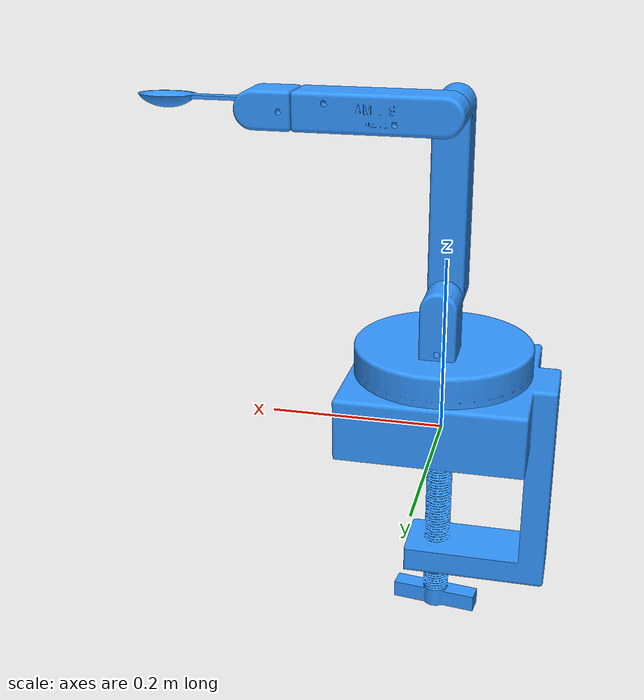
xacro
<?xml version="1.0"?>
<robot xmlns:xacro="http://www.ros.org/wiki/xacro" name="mark_one_arm">
    <xacro:arg name="initial_positions_file" default="$(find mark_one_arm_description)/config/initial_positions.yaml" />

    <!-- Import mark_one_arm urdf file -->
    <xacro:include filename="$(find mark_one_arm_description)/urdf/mark_one_arm.urdf.xacro" />

    <!-- Import control_xacro -->
    <xacro:include filename="mark_one_arm.ros2_control.xacro" />

    <xacro:mark_one_arm_ros2_control name="FakeSystem" initial_positions_file="$(arg initial_positions_file)"/>

</robot>

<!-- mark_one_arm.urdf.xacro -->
<robot name="mark_one_arm" xmlns:xacro="http://www.ros.org/wiki/xacro">

  <xacro:arg name="sim_gazebo" default="false" />
  <xacro:arg name="sim_ignition" default="false" />
  <!-- initial position for simulations (Fake Hardware, Gazebo, Ignition) -->
  <xacro:arg name="initial_positions_file" default="$(find mark_one_arm_description)/config/initial_positions.yaml"/>

  <!-- convert to property to use substitution in function -->
  <xacro:property name="initial_positions_file" default="$(arg initial_positions_file)"/>
  <xacro:property name="initial_positions" value="${xacro.load_yaml(initial_positions_file)}"/>
  <xacro:property name="effort" value="1.5"/>
  <xacro:property name="velocity" value="${2*pi}"/>

  <xacro:include filename="$(find mark_one_arm_description)/urdf/common_properties.xacro"/>
  <xacro:include filename="$(find mark_one_arm_description)/urdf/mark_one_gazebo.xacro"/>
  <xacro:include filename="$(find mark_one_arm_description)/urdf/mark_one_ros2_control.xacro"/>

  <!-- create link fixed to the "world" -->
  <link name="world" />
  <link name="base_link">
    <xacro:box_inertia m="1.7609" l="0.2074" w="0.2074" h="0.07" xyz="0 0 0.03" rpy="${pi/2} 0 0"/>
    <visual>
      <origin xyz="0 0 0" rpy="0 0 0" />
      <geometry>
        <mesh filename="file://$(find mark_one_arm_description)/meshes/base_link.STL" />
      </geometry>
      <material name="">
        <color rgba="0.19608 0.58824 1 1" />
      </material>
    </visual>
    <collision>
      <origin xyz="0 0 0.03" rpy="0 0 0" />
      <geometry>
        <box size="0.2074 0.2074 0.07"/>
      </geometry>
    </collision>
  </link>
  <joint name="base_joint" type="fixed">
    <parent link="world"/>
    <child link="base_link"/>
    <origin rpy="0.0 0.0 0.0" xyz="0.0 0.0 0.005"/>
  </joint>
  <link name="Link_1">
    <inertial>
      <origin xyz="0.00065581 -0.0064466 0.026051" rpy="0 0 0" />
      <mass value="0.42083" />
      <inertia
        ixx="0.0010943"
        ixy="-3.8989E-08"
        ixz="6.9374E-08"
        iyy="0.00108"
        iyz="3.3023E-05"
        izz="0.0019753" />
    </inertial>
    <visual>
      <origin xyz="0 0 0" rpy="0 0 0" />
      <geometry>
        <mesh filename="file://$(find mark_one_arm_description)/meshes/Link_1.STL" />
      </geometry>
      <material name="">
        <color rgba="0.19608 0.58824 1 1" />
      </material>
    </visual>
    <collision>
      <origin xyz="0 0 0" rpy="0 0 0" />
      <geometry>
        <mesh filename="file://$(find mark_one_arm_description)/meshes/Link_1.STL" />
      </geometry>
    </collision>
  </link>
  <joint name="joint_1" type="revolute">
    <origin xyz="0.0005 0 0.0675" rpy="0 0 3.1416" />
    <parent link="base_link" />
    <child link="Link_1" />
    <axis xyz="0 0 -1" />
    <limit lower="-${pi}" upper="${pi}" effort="${effort}" velocity="${velocity}" />
  </joint>
  <link name="Link_2">
    <inertial>
      <origin xyz="-9.8731E-05 0.024339 0.10001" rpy="0 0 0" />
      <mass value="0.16055" />
      <inertia
        ixx="0.00081029"
        ixy="-5.0894E-08"
        ixz="2.4508E-08"
        iyy="0.00082113"
        iyz="-1.246E-08"
        izz="5.324E-05" />
    </inertial>
    <visual>
      <origin xyz="0 0 0" rpy="0 0 0" />
      <geometry>
        <mesh filename="file://$(find mark_one_arm_description)/meshes/Link_2.STL" />
      </geometry>
      <material name="">
        <color rgba="0.19608 0.58824 1 1" />
      </material>
    </visual>
    <collision>
      <origin xyz="0 0 0" rpy="0 0 0" />
      <geometry>
        <mesh filename="file://$(find mark_one_arm_description)/meshes/Link_2.STL" />
      </geometry>
    </collision>
  </link>
  <joint name="joint_2" type="revolute">
    <origin xyz="0.0005 -0.00615 0.0875" rpy="0 0 0" />
    <parent link="Link_1" />
    <child link="Link_2" />
    <axis xyz="0 1 0" />
    <limit lower="-${pi/2}" upper="${pi/2}" effort="${effort}" velocity="${velocity}" />
  </joint>
  <link name="Link_3">
    <inertial>
      <origin xyz="-0.077349 -0.024767 4.4737E-05" rpy="0 0 0" />
      <mass value="0.22178" />
      <inertia
        ixx="4.9456E-05"
        ixy="3.1264E-06"
        ixz="1.5521E-06"
        iyy="0.00038278"
        iyz="-3.4186E-08"
        izz="0.00037292" />
    </inertial>
    <visual>
      <origin xyz="0 0 0" rpy="0 0 0" />
      <geometry>
        <mesh filename="file://$(find mark_one_arm_description)/meshes/Link_3.STL" />
      </geometry>
      <material name="">
        <color rgba="0.19608 0.58824 1 1" />
      </material>
    </visual>
    <collision>
      <origin xyz="0 0 0" rpy="0 0 0" />
      <geometry>
        <mesh filename="file://$(find mark_one_arm_description)/meshes/Link_3.STL" />
      </geometry>
    </collision>
  </link>
  <joint name="joint_3" type="revolute">
    <origin xyz="0 0 0.20005" rpy="0 0 0" />
    <parent link="Link_2" />
    <child link="Link_3" />
    <axis xyz="0 1 0" />
    <limit lower="-${pi/2}" upper="${pi/2}" effort="${effort}" velocity="${velocity}" />
  </joint>
  <link name="Link_4">
    <inertial>
      <origin xyz="-0.030101 0.0058914 -0.0054388" rpy="0 0 0" />
      <mass value="0.10316" />
      <inertia
        ixx="1.8487E-05"
        ixy="2.0257E-07"
        ixz="-1.3162E-08"
        iyy="2.6443E-05"
        iyz="2.9228E-08"
        izz="2.8243E-05" />
    </inertial>
    <visual>
      <origin xyz="0 0 0" rpy="0 0 0" />
      <geometry>
        <mesh filename="file://$(find mark_one_arm_description)/meshes/Link_4.STL" />
      </geometry>
      <material name="">
        <color rgba="0.19608 0.58824 1 1" />
      </material>
    </visual>
    <collision>
      <origin xyz="0 0 0" rpy="0 0 0" />
      <geometry>
        <mesh filename="file://$(find mark_one_arm_description)/meshes/Link_4.STL" />
      </geometry>
    </collision>
  </link>
  <joint name="joint_4" type="revolute">
    <origin xyz="-0.15685 -0.0252 0.0054" rpy="0 0 0" />
    <parent link="Link_3" />
    <child link="Link_4" />
    <axis xyz="1 0 0" />
    <limit lower="-${pi}" upper="${pi}" effort="${effort}" velocity="${velocity}" />
  </joint>
  <link name="Link_5">
    <inertial>
      <origin xyz="-0.04751 0.01529 -0.0019025" rpy="0 0 0" />
      <mass value="0.016216" />
      <inertia
        ixx="1.635E-06"
        ixy="2.3499E-10"
        ixz="-1.1461E-06"
        iyy="2.7644E-05"
        iyz="-2.9451E-09"
        izz="2.8764E-05" />
    </inertial>
    <visual>
      <origin xyz="0 0 0" rpy="0 0 0" />
      <geometry>
        <mesh filename="file://$(find mark_one_arm_description)/meshes/Link_5.STL" />
      </geometry>
      <material name="">
        <color rgba="0.19608 0.58824 1 1" />
      </material>
    </visual>
    <collision>
      <origin xyz="0 0 0" rpy="0 0 0" />
      <geometry>
        <mesh filename="file://$(find mark_one_arm_description)/meshes/Link_5.STL" />
      </geometry>
    </collision>
  </link>
  <joint name="joint_5" type="revolute">
    <origin xyz="-0.03875 0.02745 -0.00545" rpy="0 0 0" />
    <parent link="Link_4" />
    <child link="Link_5" />
    <axis xyz="0 -1 0" />
    <limit lower="-${pi}" upper="${pi}" effort="${effort}" velocity="${velocity}" />
  </joint>
</robot>
